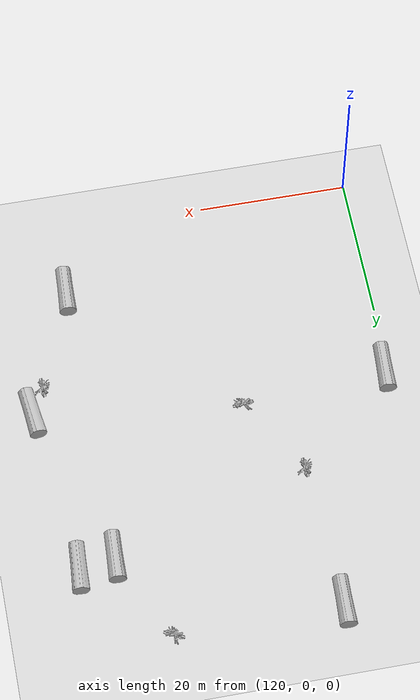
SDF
<sdf version="1.7">
 <world name="default">
  <model name="ground_plane">
   <static>1</static>
   <link name="link">
    <collision name="collision">
     <geometry><plane><normal>0 0 1</normal><size>100 100</size></plane></geometry>
     <surface><friction><ode><mu>100</mu><mu2>50</mu2></ode></friction></surface>
    </collision>
    <visual name="visual">
     <cast_shadows>0</cast_shadows>
     <geometry><plane><normal>0 0 1</normal><size>100 100</size></plane></geometry>
     <material>
      <script><uri>file://media/materials/scripts/gazebo.material</uri><name>Gazebo/Grey</name></script>
     </material>
    </visual>
   </link>
   <pose>0 0 -0.1 0 -0 0</pose>
  </model>
  <model name="buoy_3">
   <link name="link">
    <inertial>
     <pose>0 0 -1 0 -0 0</pose>
     <mass>20</mass>
     <inertia><ixx>1</ixx><ixy>0</ixy><ixz>0</ixz><iyy>1</iyy><iyz>0</iyz><izz>0.1</izz></inertia>
    </inertial>
    <collision name="upright">
     <geometry><cylinder><radius>1.5</radius><length>0.5</length></cylinder></geometry>
    </collision>
    <visual name="trunk_visual">
     <geometry><mesh><uri>model://branche1_buoy/meshes/branche1.dae</uri></mesh></geometry>
    </visual>
   </link>
   <plugin name="TrunkBuoyancyPlugin" filename="libbuoyancy_gazebo_plugin.so">
    <wave_model>ocean_waves</wave_model>
    <fluid_density>1000</fluid_density>
    <fluid_level>0.0</fluid_level>
    <linear_drag>25.0</linear_drag>
    <angular_drag>2.0</angular_drag>
    <buoyancy name="buoyancy_sphere">
     <link_name>link</link_name>
     <pose>0 0 0.2 0 0 0</pose>
     <geometry><sphere><radius>0.325</radius></sphere></geometry>
    </buoyancy>
   </plugin>
   <plugin name="TrunkFollowPlugin" filename="libfollow_plugin.so">
    <link_name>link</link_name>
    <loop_forever>1</loop_forever>
    <line><direction>0</direction><length>-1</length><force>100</force><torque>1</torque></line>
   </plugin>
   <pose>140.111 30.8969 0.150003 2e-06 4e-06 1.46396</pose>
  </model>
  <model name="buoy_9">
   <link name="link">
    <inertial>
     <mass>200</mass>
     <inertia><ixx>10</ixx><ixy>0</ixy><ixz>0</ixz><iyy>10</iyy><iyz>0</iyz><izz>100</izz></inertia>
    </inertial>
    <collision name="trunk_collision">
     <pose>0 0 0 1.57 -0 0</pose>
     <geometry><cylinder><radius>1</radius><length>7</length></cylinder></geometry>
    </collision>
    <visual name="trunk_visual">
     <geometry><mesh><uri>model://trunk2_buoy/meshes/trunk2.dae</uri></mesh></geometry>
    </visual>
   </link>
   <plugin name="TrunkFollowPlugin" filename="libfollow_plugin.so">
    <link_name>link</link_name>
    <loop_forever>1</loop_forever>
    <line><direction>0</direction><length>10</length><force>1</force><torque>-10</torque></line>
   </plugin>
   <pose>160.507 9.82499 0.9 0.000796 1.38703 -0.014085</pose>
  </model>
  <model name="buoy_13">
   <link name="link">
    <inertial>
     <pose>0 0 -1 0 -0 0</pose>
     <mass>20</mass>
     <inertia><ixx>1</ixx><ixy>0</ixy><ixz>0</ixz><iyy>1</iyy><iyz>0</iyz><izz>0.1</izz></inertia>
    </inertial>
    <collision name="upright">
     <geometry><cylinder><radius>1.5</radius><length>0.5</length></cylinder></geometry>
    </collision>
    <visual name="trunk_visual">
     <geometry><mesh><uri>model://branche1_buoy/meshes/branche1.dae</uri></mesh></geometry>
    </visual>
   </link>
   <plugin name="TrunkBuoyancyPlugin" filename="libbuoyancy_gazebo_plugin.so">
    <wave_model>ocean_waves</wave_model>
    <fluid_density>1000</fluid_density>
    <fluid_level>0.0</fluid_level>
    <linear_drag>25.0</linear_drag>
    <angular_drag>2.0</angular_drag>
    <buoyancy name="buoyancy_sphere">
     <link_name>link</link_name>
     <pose>0 0 0.2 0 0 0</pose>
     <geometry><sphere><radius>0.325</radius></sphere></geometry>
    </buoyancy>
   </plugin>
   <plugin name="TrunkFollowPlugin" filename="libfollow_plugin.so">
    <link_name>link</link_name>
    <loop_forever>1</loop_forever>
    <line><direction>0</direction><length>-1</length><force>100</force><torque>1</torque></line>
   </plugin>
   <pose>165.791 23.6371 0.149993 -2e-06 -2e-06 -0.171867</pose>
  </model>
  <model name="buoy_18">
   <link name="link">
    <inertial>
     <mass>200</mass>
     <inertia><ixx>10</ixx><ixy>0</ixy><ixz>0</ixz><iyy>10</iyy><iyz>0</iyz><izz>100</izz></inertia>
    </inertial>
    <collision name="trunk_collision">
     <pose>0 0 0 1.57 -0 0</pose>
     <geometry><cylinder><radius>1</radius><length>7</length></cylinder></geometry>
    </collision>
    <visual name="trunk_visual">
     <geometry><mesh><uri>model://trunk2_buoy/meshes/trunk2.dae</uri></mesh></geometry>
    </visual>
   </link>
   <plugin name="TrunkFollowPlugin" filename="libfollow_plugin.so">
    <link_name>link</link_name>
    <loop_forever>1</loop_forever>
    <line><direction>0</direction><length>10</length><force>1</force><torque>-10</torque></line>
   </plugin>
   <pose>120.657 29.1938 0.899995 0.000811 1.46666 -0.026966</pose>
  </model>
  <model name="buoy_19">
   <link name="link">
    <inertial>
     <mass>200</mass>
     <inertia><ixx>10</ixx><ixy>0</ixy><ixz>0</ixz><iyy>10</iyy><iyz>0</iyz><izz>100</izz></inertia>
    </inertial>
    <collision name="trunk_collision">
     <pose>0 0 0 1.57 -0 0</pose>
     <geometry><cylinder><radius>1</radius><length>7</length></cylinder></geometry>
    </collision>
    <visual name="trunk_visual">
     <geometry><mesh><uri>model://trunk2_buoy/meshes/trunk2.dae</uri></mesh></geometry>
    </visual>
   </link>
   <plugin name="TrunkFollowPlugin" filename="libfollow_plugin.so">
    <link_name>link</link_name>
    <loop_forever>1</loop_forever>
    <line><direction>0</direction><length>10</length><force>1</force><torque>-10</torque></line>
   </plugin>
   <pose>167.777 27.5077 0.899997 -3.14079 -0.569386 -3.04263</pose>
  </model>
  <model name="buoy_22">
   <link name="link">
    <inertial>
     <pose>0 0 -1 0 -0 0</pose>
     <mass>20</mass>
     <inertia><ixx>1</ixx><ixy>0</ixy><ixz>0</ixz><iyy>1</iyy><iyz>0</iyz><izz>0.1</izz></inertia>
    </inertial>
    <collision name="upright">
     <geometry><cylinder><radius>1.5</radius><length>0.5</length></cylinder></geometry>
    </collision>
    <visual name="trunk_visual">
     <geometry><mesh><uri>model://branche1_buoy/meshes/branche1.dae</uri></mesh></geometry>
    </visual>
   </link>
   <plugin name="TrunkBuoyancyPlugin" filename="libbuoyancy_gazebo_plugin.so">
    <wave_model>ocean_waves</wave_model>
    <fluid_density>1000</fluid_density>
    <fluid_level>0.0</fluid_level>
    <linear_drag>25.0</linear_drag>
    <angular_drag>2.0</angular_drag>
    <buoyancy name="buoyancy_sphere">
     <link_name>link</link_name>
     <pose>0 0 0.2 0 0 0</pose>
     <geometry><sphere><radius>0.325</radius></sphere></geometry>
    </buoyancy>
   </plugin>
   <plugin name="TrunkFollowPlugin" filename="libfollow_plugin.so">
    <link_name>link</link_name>
    <loop_forever>1</loop_forever>
    <line><direction>0</direction><length>-1</length><force>100</force><torque>1</torque></line>
   </plugin>
   <pose>133.95 41.6191 0.15 -0 -1e-06 -0.154014</pose>
  </model>
  <model name="buoy_23">
   <link name="link">
    <inertial>
     <pose>0 0 -1 0 -0 0</pose>
     <mass>20</mass>
     <inertia><ixx>1</ixx><ixy>0</ixy><ixz>0</ixz><iyy>1</iyy><iyz>0</iyz><izz>0.1</izz></inertia>
    </inertial>
    <collision name="upright">
     <geometry><cylinder><radius>1.5</radius><length>0.5</length></cylinder></geometry>
    </collision>
    <visual name="trunk_visual">
     <geometry><mesh><uri>model://branche1_buoy/meshes/branche1.dae</uri></mesh></geometry>
    </visual>
   </link>
   <plugin name="TrunkBuoyancyPlugin" filename="libbuoyancy_gazebo_plugin.so">
    <wave_model>ocean_waves</wave_model>
    <fluid_density>1000</fluid_density>
    <fluid_level>0.0</fluid_level>
    <linear_drag>25.0</linear_drag>
    <angular_drag>2.0</angular_drag>
    <buoyancy name="buoyancy_sphere">
     <link_name>link</link_name>
     <pose>0 0 0.2 0 0 0</pose>
     <geometry><sphere><radius>0.325</radius></sphere></geometry>
    </buoyancy>
   </plugin>
   <plugin name="TrunkFollowPlugin" filename="libfollow_plugin.so">
    <link_name>link</link_name>
    <loop_forever>1</loop_forever>
    <line><direction>0</direction><length>-1</length><force>100</force><torque>1</torque></line>
   </plugin>
   <pose>154.913 61.5932 0.150008 1e-06 1e-05 0.897026</pose>
  </model>
  <model name="buoy_29">
   <link name="link">
    <inertial>
     <mass>200</mass>
     <inertia><ixx>10</ixx><ixy>0</ixy><ixz>0</ixz><iyy>10</iyy><iyz>0</iyz><izz>100</izz></inertia>
    </inertial>
    <collision name="trunk_collision">
     <pose>0 0 0 1.57 -0 0</pose>
     <geometry><cylinder><radius>1</radius><length>7</length></cylinder></geometry>
    </collision>
    <visual name="trunk_visual">
     <geometry><mesh><uri>model://trunk2_buoy/meshes/trunk2.dae</uri></mesh></geometry>
    </visual>
   </link>
   <plugin name="TrunkFollowPlugin" filename="libfollow_plugin.so">
    <link_name>link</link_name>
    <loop_forever>1</loop_forever>
    <line><direction>0</direction><length>10</length><force>1</force><torque>-10</torque></line>
   </plugin>
   <pose>160.507 49.825 0.9 0.000796 1.38703 -0.014085</pose>
  </model>
  <model name="buoy_30">
   <link name="link">
    <inertial>
     <mass>200</mass>
     <inertia><ixx>10</ixx><ixy>0</ixy><ixz>0</ixz><iyy>10</iyy><iyz>0</iyz><izz>100</izz></inertia>
    </inertial>
    <collision name="trunk_collision">
     <pose>0 0 0 1.57 -0 0</pose>
     <geometry><cylinder><radius>1</radius><length>7</length></cylinder></geometry>
    </collision>
    <visual name="trunk_visual">
     <geometry><mesh><uri>model://trunk2_buoy/meshes/trunk2.dae</uri></mesh></geometry>
    </visual>
   </link>
   <plugin name="TrunkFollowPlugin" filename="libfollow_plugin.so">
    <link_name>link</link_name>
    <loop_forever>1</loop_forever>
    <line><direction>0</direction><length>10</length><force>1</force><torque>-10</torque></line>
   </plugin>
   <pose>165.355 50.5285 0.899995 -3.1408 1.13839 3.10855</pose>
  </model>
  <model name="buoy_26_clone_2">
   <link name="link">
    <inertial>
     <mass>200</mass>
     <inertia><ixx>10</ixx><ixy>0</ixy><ixz>0</ixz><iyy>10</iyy><iyz>0</iyz><izz>100</izz></inertia>
    </inertial>
    <collision name="trunk_collision">
     <pose>0 0 0 1.57 -0 0</pose>
     <geometry><cylinder><radius>1</radius><length>7</length></cylinder></geometry>
    </collision>
    <visual name="trunk_visual">
     <geometry><mesh><uri>model://trunk2_buoy/meshes/trunk2.dae</uri></mesh></geometry>
    </visual>
   </link>
   <plugin name="TrunkFollowPlugin" filename="libfollow_plugin.so">
    <link_name>link</link_name>
    <loop_forever>1</loop_forever>
    <line><direction>0</direction><length>10</length><force>1</force><torque>-10</torque></line>
   </plugin>
   <pose>132.967 61.3059 0.899995 0.000789 1.39931 -0.005675</pose>
  </model>
 </world>
</sdf>
